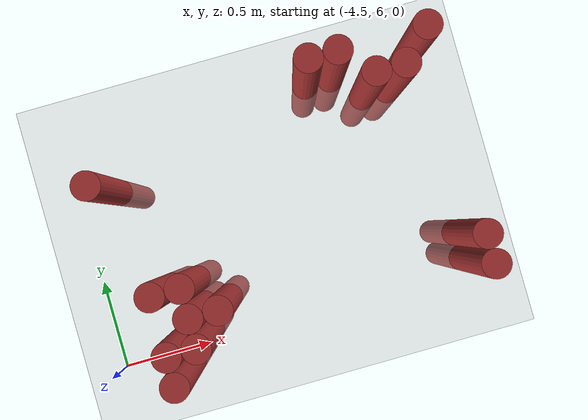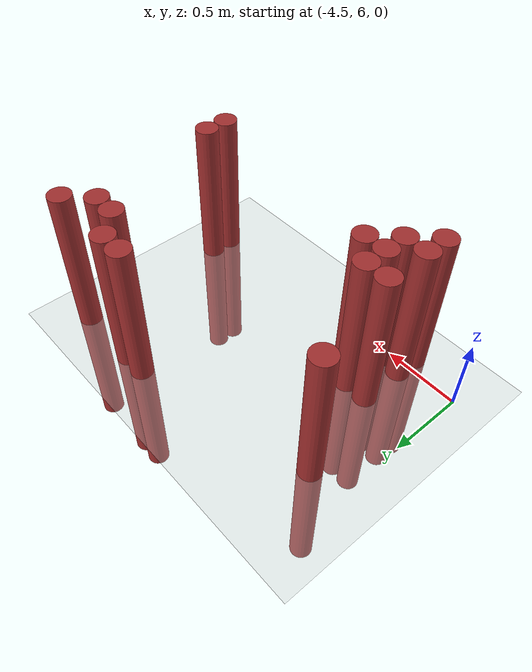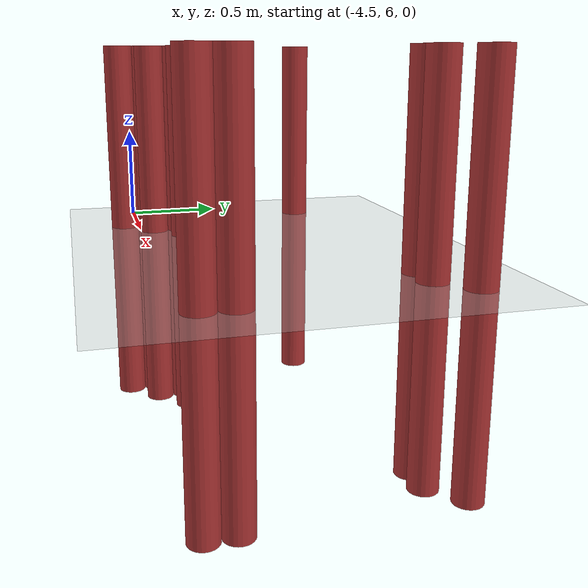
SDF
<sdf version="1.6">
 <world name="default">
  <model name="ground_plane">
   <static>1</static>
   <link name="link">
    <collision name="collision">
     <geometry><plane><normal>0 0 1</normal><size>100 100</size></plane></geometry>
     <surface><friction><ode><mu>100</mu><mu2>50</mu2></ode></friction></surface>
    </collision>
    <visual name="visual">
     <cast_shadows>0</cast_shadows>
     <geometry><plane><normal>0 0 1</normal><size>100 100</size></plane></geometry>
     <material>
      <script><uri>file://media/materials/scripts/gazebo.material</uri><name>Gazebo/Grey</name></script>
     </material>
    </visual>
   </link>
  </model>
  <model name="unit_cylinder_133">
   <static>1</static>
   <pose>-4.275000 6.975000 0.000000 0.000000 0.000000 0.000000</pose>
   <link name="link">
    <inertial>
     <mass>1</mass>
     <inertia><ixx>0.145833</ixx><ixy>0</ixy><ixz>0</ixz><iyy>0.145833</iyy><iyz>0</iyz><izz>0.125</izz></inertia>
    </inertial>
    <collision name="collision">
     <geometry><cylinder><radius>0.075000</radius><length>2</length></cylinder></geometry>
    </collision>
    <visual name="visual">
     <geometry><cylinder><radius>0.075000</radius><length>2</length></cylinder></geometry>
     <material>
      <ambient>0.648000 0.192000 0.192000 1</ambient>
      <diffuse>0.648000 0.192000 0.192000 1</diffuse>
     </material>
     <material>
      <script><name>Gazebo/Grey</name><uri>file://media/materials/scripts/gazebo.material</uri></script>
     </material>
    </visual>
   </link>
  </model>
  <model name="unit_cylinder_137">
   <static>1</static>
   <pose>-4.125000 5.925000 0.000000 0.000000 0.000000 0.000000</pose>
   <link name="link">
    <inertial>
     <mass>1</mass>
     <inertia><ixx>0.145833</ixx><ixy>0</ixy><ixz>0</ixz><iyy>0.145833</iyy><iyz>0</iyz><izz>0.125</izz></inertia>
    </inertial>
    <collision name="collision">
     <geometry><cylinder><radius>0.075000</radius><length>2</length></cylinder></geometry>
    </collision>
    <visual name="visual">
     <geometry><cylinder><radius>0.075000</radius><length>2</length></cylinder></geometry>
     <material>
      <ambient>0.648000 0.192000 0.192000 1</ambient>
      <diffuse>0.648000 0.192000 0.192000 1</diffuse>
     </material>
     <material>
      <script><name>Gazebo/Grey</name><uri>file://media/materials/scripts/gazebo.material</uri></script>
     </material>
    </visual>
   </link>
  </model>
  <model name="unit_cylinder_138">
   <static>1</static>
   <pose>-4.125000 6.075000 0.000000 0.000000 0.000000 0.000000</pose>
   <link name="link">
    <inertial>
     <mass>1</mass>
     <inertia><ixx>0.145833</ixx><ixy>0</ixy><ixz>0</ixz><iyy>0.145833</iyy><iyz>0</iyz><izz>0.125</izz></inertia>
    </inertial>
    <collision name="collision">
     <geometry><cylinder><radius>0.075000</radius><length>2</length></cylinder></geometry>
    </collision>
    <visual name="visual">
     <geometry><cylinder><radius>0.075000</radius><length>2</length></cylinder></geometry>
     <material>
      <ambient>0.648000 0.192000 0.192000 1</ambient>
      <diffuse>0.648000 0.192000 0.192000 1</diffuse>
     </material>
     <material>
      <script><name>Gazebo/Grey</name><uri>file://media/materials/scripts/gazebo.material</uri></script>
     </material>
    </visual>
   </link>
  </model>
  <model name="unit_cylinder_139">
   <static>1</static>
   <pose>-4.125000 6.375000 0.000000 0.000000 0.000000 0.000000</pose>
   <link name="link">
    <inertial>
     <mass>1</mass>
     <inertia><ixx>0.145833</ixx><ixy>0</ixy><ixz>0</ixz><iyy>0.145833</iyy><iyz>0</iyz><izz>0.125</izz></inertia>
    </inertial>
    <collision name="collision">
     <geometry><cylinder><radius>0.075000</radius><length>2</length></cylinder></geometry>
    </collision>
    <visual name="visual">
     <geometry><cylinder><radius>0.075000</radius><length>2</length></cylinder></geometry>
     <material>
      <ambient>0.648000 0.192000 0.192000 1</ambient>
      <diffuse>0.648000 0.192000 0.192000 1</diffuse>
     </material>
     <material>
      <script><name>Gazebo/Grey</name><uri>file://media/materials/scripts/gazebo.material</uri></script>
     </material>
    </visual>
   </link>
  </model>
  <model name="unit_cylinder_140">
   <static>1</static>
   <pose>-3.975000 6.075000 0.000000 0.000000 0.000000 0.000000</pose>
   <link name="link">
    <inertial>
     <mass>1</mass>
     <inertia><ixx>0.145833</ixx><ixy>0</ixy><ixz>0</ixz><iyy>0.145833</iyy><iyz>0</iyz><izz>0.125</izz></inertia>
    </inertial>
    <collision name="collision">
     <geometry><cylinder><radius>0.075000</radius><length>2</length></cylinder></geometry>
    </collision>
    <visual name="visual">
     <geometry><cylinder><radius>0.075000</radius><length>2</length></cylinder></geometry>
     <material>
      <ambient>0.648000 0.192000 0.192000 1</ambient>
      <diffuse>0.648000 0.192000 0.192000 1</diffuse>
     </material>
     <material>
      <script><name>Gazebo/Grey</name><uri>file://media/materials/scripts/gazebo.material</uri></script>
     </material>
    </visual>
   </link>
  </model>
  <model name="unit_cylinder_141">
   <static>1</static>
   <pose>-3.975000 6.225000 0.000000 0.000000 0.000000 0.000000</pose>
   <link name="link">
    <inertial>
     <mass>1</mass>
     <inertia><ixx>0.145833</ixx><ixy>0</ixy><ixz>0</ixz><iyy>0.145833</iyy><iyz>0</iyz><izz>0.125</izz></inertia>
    </inertial>
    <collision name="collision">
     <geometry><cylinder><radius>0.075000</radius><length>2</length></cylinder></geometry>
    </collision>
    <visual name="visual">
     <geometry><cylinder><radius>0.075000</radius><length>2</length></cylinder></geometry>
     <material>
      <ambient>0.648000 0.192000 0.192000 1</ambient>
      <diffuse>0.648000 0.192000 0.192000 1</diffuse>
     </material>
     <material>
      <script><name>Gazebo/Grey</name><uri>file://media/materials/scripts/gazebo.material</uri></script>
     </material>
    </visual>
   </link>
  </model>
  <model name="unit_cylinder_142">
   <static>1</static>
   <pose>-3.975000 6.375000 0.000000 0.000000 0.000000 0.000000</pose>
   <link name="link">
    <inertial>
     <mass>1</mass>
     <inertia><ixx>0.145833</ixx><ixy>0</ixy><ixz>0</ixz><iyy>0.145833</iyy><iyz>0</iyz><izz>0.125</izz></inertia>
    </inertial>
    <collision name="collision">
     <geometry><cylinder><radius>0.075000</radius><length>2</length></cylinder></geometry>
    </collision>
    <visual name="visual">
     <geometry><cylinder><radius>0.075000</radius><length>2</length></cylinder></geometry>
     <material>
      <ambient>0.648000 0.192000 0.192000 1</ambient>
      <diffuse>0.648000 0.192000 0.192000 1</diffuse>
     </material>
     <material>
      <script><name>Gazebo/Grey</name><uri>file://media/materials/scripts/gazebo.material</uri></script>
     </material>
    </visual>
   </link>
  </model>
  <model name="unit_cylinder_144">
   <static>1</static>
   <pose>-3.825000 6.225000 0.000000 0.000000 0.000000 0.000000</pose>
   <link name="link">
    <inertial>
     <mass>1</mass>
     <inertia><ixx>0.145833</ixx><ixy>0</ixy><ixz>0</ixz><iyy>0.145833</iyy><iyz>0</iyz><izz>0.125</izz></inertia>
    </inertial>
    <collision name="collision">
     <geometry><cylinder><radius>0.075000</radius><length>2</length></cylinder></geometry>
    </collision>
    <visual name="visual">
     <geometry><cylinder><radius>0.075000</radius><length>2</length></cylinder></geometry>
     <material>
      <ambient>0.648000 0.192000 0.192000 1</ambient>
      <diffuse>0.648000 0.192000 0.192000 1</diffuse>
     </material>
     <material>
      <script><name>Gazebo/Grey</name><uri>file://media/materials/scripts/gazebo.material</uri></script>
     </material>
    </visual>
   </link>
  </model>
  <model name="unit_cylinder_149">
   <static>1</static>
   <pose>-3.075000 7.275000 0.000000 0.000000 0.000000 0.000000</pose>
   <link name="link">
    <inertial>
     <mass>1</mass>
     <inertia><ixx>0.145833</ixx><ixy>0</ixy><ixz>0</ixz><iyy>0.145833</iyy><iyz>0</iyz><izz>0.125</izz></inertia>
    </inertial>
    <collision name="collision">
     <geometry><cylinder><radius>0.075000</radius><length>2</length></cylinder></geometry>
    </collision>
    <visual name="visual">
     <geometry><cylinder><radius>0.075000</radius><length>2</length></cylinder></geometry>
     <material>
      <ambient>0.648000 0.192000 0.192000 1</ambient>
      <diffuse>0.648000 0.192000 0.192000 1</diffuse>
     </material>
     <material>
      <script><name>Gazebo/Grey</name><uri>file://media/materials/scripts/gazebo.material</uri></script>
     </material>
    </visual>
   </link>
  </model>
  <model name="unit_cylinder_153">
   <static>1</static>
   <pose>-2.925000 7.275000 0.000000 0.000000 0.000000 0.000000</pose>
   <link name="link">
    <inertial>
     <mass>1</mass>
     <inertia><ixx>0.145833</ixx><ixy>0</ixy><ixz>0</ixz><iyy>0.145833</iyy><iyz>0</iyz><izz>0.125</izz></inertia>
    </inertial>
    <collision name="collision">
     <geometry><cylinder><radius>0.075000</radius><length>2</length></cylinder></geometry>
    </collision>
    <visual name="visual">
     <geometry><cylinder><radius>0.075000</radius><length>2</length></cylinder></geometry>
     <material>
      <ambient>0.648000 0.192000 0.192000 1</ambient>
      <diffuse>0.648000 0.192000 0.192000 1</diffuse>
     </material>
     <material>
      <script><name>Gazebo/Grey</name><uri>file://media/materials/scripts/gazebo.material</uri></script>
     </material>
    </visual>
   </link>
  </model>
  <model name="unit_cylinder_157">
   <static>1</static>
   <pose>-2.775000 7.125000 0.000000 0.000000 0.000000 0.000000</pose>
   <link name="link">
    <inertial>
     <mass>1</mass>
     <inertia><ixx>0.145833</ixx><ixy>0</ixy><ixz>0</ixz><iyy>0.145833</iyy><iyz>0</iyz><izz>0.125</izz></inertia>
    </inertial>
    <collision name="collision">
     <geometry><cylinder><radius>0.075000</radius><length>2</length></cylinder></geometry>
    </collision>
    <visual name="visual">
     <geometry><cylinder><radius>0.075000</radius><length>2</length></cylinder></geometry>
     <material>
      <ambient>0.648000 0.192000 0.192000 1</ambient>
      <diffuse>0.648000 0.192000 0.192000 1</diffuse>
     </material>
     <material>
      <script><name>Gazebo/Grey</name><uri>file://media/materials/scripts/gazebo.material</uri></script>
     </material>
    </visual>
   </link>
  </model>
  <model name="unit_cylinder_158">
   <static>1</static>
   <pose>-2.625000 7.125000 0.000000 0.000000 0.000000 0.000000</pose>
   <link name="link">
    <inertial>
     <mass>1</mass>
     <inertia><ixx>0.145833</ixx><ixy>0</ixy><ixz>0</ixz><iyy>0.145833</iyy><iyz>0</iyz><izz>0.125</izz></inertia>
    </inertial>
    <collision name="collision">
     <geometry><cylinder><radius>0.075000</radius><length>2</length></cylinder></geometry>
    </collision>
    <visual name="visual">
     <geometry><cylinder><radius>0.075000</radius><length>2</length></cylinder></geometry>
     <material>
      <ambient>0.648000 0.192000 0.192000 1</ambient>
      <diffuse>0.648000 0.192000 0.192000 1</diffuse>
     </material>
     <material>
      <script><name>Gazebo/Grey</name><uri>file://media/materials/scripts/gazebo.material</uri></script>
     </material>
    </visual>
   </link>
  </model>
  <model name="unit_cylinder_159">
   <static>1</static>
   <pose>-2.475000 6.075000 0.000000 0.000000 0.000000 0.000000</pose>
   <link name="link">
    <inertial>
     <mass>1</mass>
     <inertia><ixx>0.145833</ixx><ixy>0</ixy><ixz>0</ixz><iyy>0.145833</iyy><iyz>0</iyz><izz>0.125</izz></inertia>
    </inertial>
    <collision name="collision">
     <geometry><cylinder><radius>0.075000</radius><length>2</length></cylinder></geometry>
    </collision>
    <visual name="visual">
     <geometry><cylinder><radius>0.075000</radius><length>2</length></cylinder></geometry>
     <material>
      <ambient>0.648000 0.192000 0.192000 1</ambient>
      <diffuse>0.648000 0.192000 0.192000 1</diffuse>
     </material>
     <material>
      <script><name>Gazebo/Grey</name><uri>file://media/materials/scripts/gazebo.material</uri></script>
     </material>
    </visual>
   </link>
  </model>
  <model name="unit_cylinder_160">
   <static>1</static>
   <pose>-2.475000 6.225000 0.000000 0.000000 0.000000 0.000000</pose>
   <link name="link">
    <inertial>
     <mass>1</mass>
     <inertia><ixx>0.145833</ixx><ixy>0</ixy><ixz>0</ixz><iyy>0.145833</iyy><iyz>0</iyz><izz>0.125</izz></inertia>
    </inertial>
    <collision name="collision">
     <geometry><cylinder><radius>0.075000</radius><length>2</length></cylinder></geometry>
    </collision>
    <visual name="visual">
     <geometry><cylinder><radius>0.075000</radius><length>2</length></cylinder></geometry>
     <material>
      <ambient>0.648000 0.192000 0.192000 1</ambient>
      <diffuse>0.648000 0.192000 0.192000 1</diffuse>
     </material>
     <material>
      <script><name>Gazebo/Grey</name><uri>file://media/materials/scripts/gazebo.material</uri></script>
     </material>
    </visual>
   </link>
  </model>
  <model name="unit_cylinder_161">
   <static>1</static>
   <pose>-2.475000 7.275000 0.000000 0.000000 0.000000 0.000000</pose>
   <link name="link">
    <inertial>
     <mass>1</mass>
     <inertia><ixx>0.145833</ixx><ixy>0</ixy><ixz>0</ixz><iyy>0.145833</iyy><iyz>0</iyz><izz>0.125</izz></inertia>
    </inertial>
    <collision name="collision">
     <geometry><cylinder><radius>0.075000</radius><length>2</length></cylinder></geometry>
    </collision>
    <visual name="visual">
     <geometry><cylinder><radius>0.075000</radius><length>2</length></cylinder></geometry>
     <material>
      <ambient>0.648000 0.192000 0.192000 1</ambient>
      <diffuse>0.648000 0.192000 0.192000 1</diffuse>
     </material>
     <material>
      <script><name>Gazebo/Grey</name><uri>file://media/materials/scripts/gazebo.material</uri></script>
     </material>
    </visual>
   </link>
  </model>
 </world>
</sdf>
